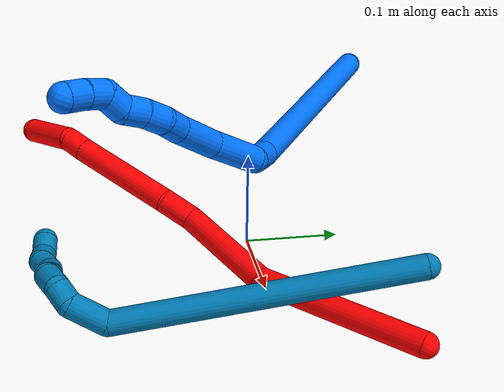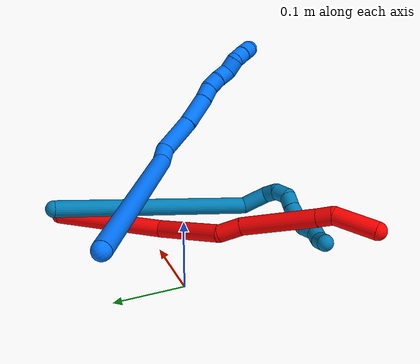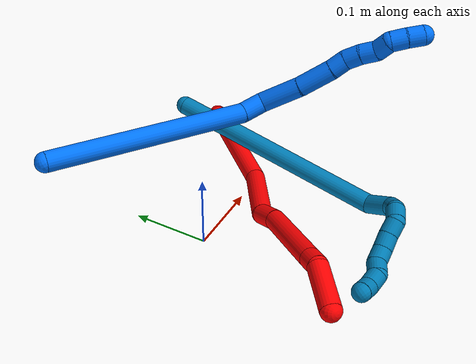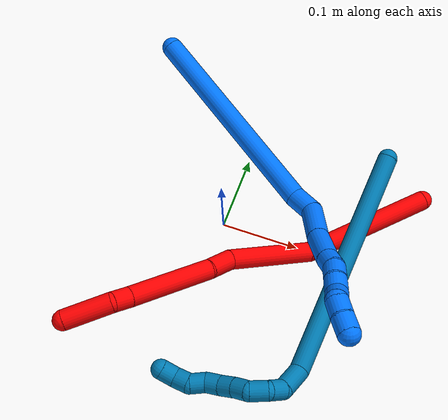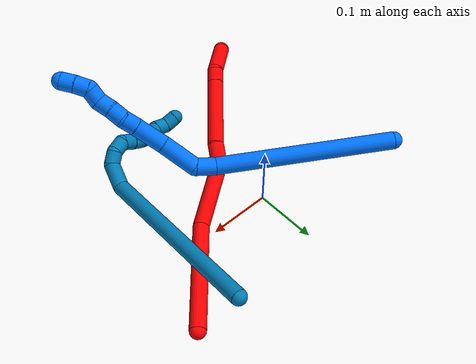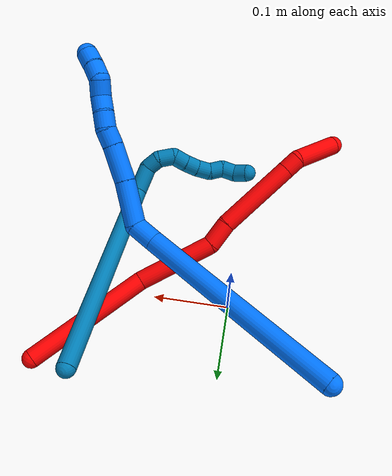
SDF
<sdf version="1.7">
 <world name="default">
  <model name="2">
   <static>0</static>
   <link name="2">
    <collision name="collision-cylinder-e_1_1_4">
     <pose>-0.020688 -0.032253 0.075958 0.40155 -0.245634 -0.050233</pose>
     <geometry><cylinder><radius>0.0125</radius><length>0.170152</length></cylinder></geometry>
     <surface>
      <friction><ode><mu>1.16</mu><mu2>1.16</mu2><slip1>0</slip1><slip2>0</slip2></ode></friction>
      <contact><ode><kp>1e+06</kp><kd>1</kd><max_vel>0</max_vel><min_depth>0.001</min_depth></ode></contact>
     </surface>
    </collision>
    <visual name="visual-cylinder-e_1_1_4">
     <pose>-0.020688 -0.032253 0.075958 0.40155 -0.245634 -0.050233</pose>
     <geometry><cylinder><radius>0.0125</radius><length>0.170152</length></cylinder></geometry>
     <material><ambient>1 0 0 1</ambient></material>
    </visual>
    <collision name="collision-cylinder-e_2_4_5">
     <pose>-0.067906 -0.075131 0.196372 0.234591 -0.525896 -0.063417</pose>
     <geometry><cylinder><radius>0.0125</radius><length>0.105698</length></cylinder></geometry>
     <surface>
      <friction><ode><mu>1.16</mu><mu2>1.16</mu2><slip1>0</slip1><slip2>0</slip2></ode></friction>
      <contact><ode><kp>1e+06</kp><kd>1</kd><max_vel>0</max_vel><min_depth>0.001</min_depth></ode></contact>
     </surface>
    </collision>
    <visual name="visual-cylinder-e_2_4_5">
     <pose>-0.067906 -0.075131 0.196372 0.234591 -0.525896 -0.063417</pose>
     <geometry><cylinder><radius>0.0125</radius><length>0.105698</length></cylinder></geometry>
     <material><ambient>1 0 0 1</ambient></material>
    </visual>
    <collision name="collision-cylinder-e_3_5_6">
     <pose>-0.096726 -0.085565 0.257675 -0.011339 -0.135116 0.000767</pose>
     <geometry><cylinder><radius>0.0125</radius><length>0.034007</length></cylinder></geometry>
     <surface>
      <friction><ode><mu>1.16</mu><mu2>1.16</mu2><slip1>0</slip1><slip2>0</slip2></ode></friction>
      <contact><ode><kp>1e+06</kp><kd>1</kd><max_vel>0</max_vel><min_depth>0.001</min_depth></ode></contact>
     </surface>
    </collision>
    <visual name="visual-cylinder-e_3_5_6">
     <pose>-0.096726 -0.085565 0.257675 -0.011339 -0.135116 0.000767</pose>
     <geometry><cylinder><radius>0.0125</radius><length>0.034007</length></cylinder></geometry>
     <material><ambient>1 0 0 1</ambient></material>
    </visual>
    <collision name="collision-cylinder-e_4_6_7">
     <pose>-0.113373 -0.093115 0.326177 0.148765 -0.268245 -0.02011</pose>
     <geometry><cylinder><radius>0.0125</radius><length>0.108336</length></cylinder></geometry>
     <surface>
      <friction><ode><mu>1.16</mu><mu2>1.16</mu2><slip1>0</slip1><slip2>0</slip2></ode></friction>
      <contact><ode><kp>1e+06</kp><kd>1</kd><max_vel>0</max_vel><min_depth>0.001</min_depth></ode></contact>
     </surface>
    </collision>
    <visual name="visual-cylinder-e_4_6_7">
     <pose>-0.113373 -0.093115 0.326177 0.148765 -0.268245 -0.02011</pose>
     <geometry><cylinder><radius>0.0125</radius><length>0.108336</length></cylinder></geometry>
     <material><ambient>1 0 0 1</ambient></material>
    </visual>
    <collision name="collision-cylinder-e_5_7_8">
     <pose>-0.130945 -0.101973 0.388449 0.104773 -0.292519 -0.015448</pose>
     <geometry><cylinder><radius>0.0125</radius><length>0.0223</length></cylinder></geometry>
     <surface>
      <friction><ode><mu>1.16</mu><mu2>1.16</mu2><slip1>0</slip1><slip2>0</slip2></ode></friction>
      <contact><ode><kp>1e+06</kp><kd>1</kd><max_vel>0</max_vel><min_depth>0.001</min_depth></ode></contact>
     </surface>
    </collision>
    <visual name="visual-cylinder-e_5_7_8">
     <pose>-0.130945 -0.101973 0.388449 0.104773 -0.292519 -0.015448</pose>
     <geometry><cylinder><radius>0.0125</radius><length>0.0223</length></cylinder></geometry>
     <material><ambient>1 0 0 1</ambient></material>
    </visual>
    <collision name="collision-cylinder-e_6_8_2">
     <pose>-0.144453 -0.119003 0.422003 0.60654 -0.353247 -0.111587</pose>
     <geometry><cylinder><radius>0.0125</radius><length>0.059507</length></cylinder></geometry>
     <surface>
      <friction><ode><mu>1.16</mu><mu2>1.16</mu2><slip1>0</slip1><slip2>0</slip2></ode></friction>
      <contact><ode><kp>1e+06</kp><kd>1</kd><max_vel>0</max_vel><min_depth>0.001</min_depth></ode></contact>
     </surface>
    </collision>
    <visual name="visual-cylinder-e_6_8_2">
     <pose>-0.144453 -0.119003 0.422003 0.60654 -0.353247 -0.111587</pose>
     <geometry><cylinder><radius>0.0125</radius><length>0.059507</length></cylinder></geometry>
     <material><ambient>1 0 0 1</ambient></material>
    </visual>
    <collision name="collision-sphere-2">
     <pose>-0.154746 -0.134916 0.44494 0 -0 0</pose>
     <geometry><sphere><radius>0.0125</radius></sphere></geometry>
     <surface>
      <friction><ode><mu>1.16</mu><mu2>1.16</mu2><slip1>0</slip1><slip2>0</slip2></ode></friction>
      <contact><ode><kp>1e+06</kp><kd>1</kd><max_vel>0</max_vel><min_depth>0.001</min_depth></ode></contact>
     </surface>
    </collision>
    <visual name="visual-sphere-2">
     <pose>-0.154746 -0.134916 0.44494 0 -0 0</pose>
     <geometry><sphere><radius>0.0125</radius></sphere></geometry>
     <material><ambient>1 0 0 1</ambient></material>
    </visual>
    <collision name="collision-sphere-4">
     <pose>-0.041376 -0.064507 0.151916 0 -0 0</pose>
     <geometry><sphere><radius>0.0125</radius></sphere></geometry>
     <surface>
      <friction><ode><mu>1.16</mu><mu2>1.16</mu2><slip1>0</slip1><slip2>0</slip2></ode></friction>
      <contact><ode><kp>1e+06</kp><kd>1</kd><max_vel>0</max_vel><min_depth>0.001</min_depth></ode></contact>
     </surface>
    </collision>
    <visual name="visual-sphere-4">
     <pose>-0.041376 -0.064507 0.151916 0 -0 0</pose>
     <geometry><sphere><radius>0.0125</radius></sphere></geometry>
     <material><ambient>1 0 0 1</ambient></material>
    </visual>
    <collision name="collision-sphere-1">
     <geometry><sphere><radius>0.0125</radius></sphere></geometry>
     <surface>
      <friction><ode><mu>1.16</mu><mu2>1.16</mu2><slip1>0</slip1><slip2>0</slip2></ode></friction>
      <contact><ode><kp>1e+06</kp><kd>1</kd><max_vel>0</max_vel><min_depth>0.001</min_depth></ode></contact>
     </surface>
    </collision>
    <visual name="visual-sphere-1">
     <geometry><sphere><radius>0.0125</radius></sphere></geometry>
     <material><ambient>1 0 0 1</ambient></material>
    </visual>
    <collision name="collision-sphere-8">
     <pose>-0.13416 -0.10309 0.399066 0 -0 0</pose>
     <geometry><sphere><radius>0.0125</radius></sphere></geometry>
     <surface>
      <friction><ode><mu>1.16</mu><mu2>1.16</mu2><slip1>0</slip1><slip2>0</slip2></ode></friction>
      <contact><ode><kp>1e+06</kp><kd>1</kd><max_vel>0</max_vel><min_depth>0.001</min_depth></ode></contact>
     </surface>
    </collision>
    <visual name="visual-sphere-8">
     <pose>-0.13416 -0.10309 0.399066 0 -0 0</pose>
     <geometry><sphere><radius>0.0125</radius></sphere></geometry>
     <material><ambient>1 0 0 1</ambient></material>
    </visual>
    <collision name="collision-sphere-5">
     <pose>-0.094435 -0.085756 0.240828 0 -0 0</pose>
     <geometry><sphere><radius>0.0125</radius></sphere></geometry>
     <surface>
      <friction><ode><mu>1.16</mu><mu2>1.16</mu2><slip1>0</slip1><slip2>0</slip2></ode></friction>
      <contact><ode><kp>1e+06</kp><kd>1</kd><max_vel>0</max_vel><min_depth>0.001</min_depth></ode></contact>
     </surface>
    </collision>
    <visual name="visual-sphere-5">
     <pose>-0.094435 -0.085756 0.240828 0 -0 0</pose>
     <geometry><sphere><radius>0.0125</radius></sphere></geometry>
     <material><ambient>1 0 0 1</ambient></material>
    </visual>
    <collision name="collision-sphere-6">
     <pose>-0.099016 -0.085374 0.274523 0 -0 0</pose>
     <geometry><sphere><radius>0.0125</radius></sphere></geometry>
     <surface>
      <friction><ode><mu>1.16</mu><mu2>1.16</mu2><slip1>0</slip1><slip2>0</slip2></ode></friction>
      <contact><ode><kp>1e+06</kp><kd>1</kd><max_vel>0</max_vel><min_depth>0.001</min_depth></ode></contact>
     </surface>
    </collision>
    <visual name="visual-sphere-6">
     <pose>-0.099016 -0.085374 0.274523 0 -0 0</pose>
     <geometry><sphere><radius>0.0125</radius></sphere></geometry>
     <material><ambient>1 0 0 1</ambient></material>
    </visual>
    <collision name="collision-sphere-7">
     <pose>-0.12773 -0.100857 0.377831 0 -0 0</pose>
     <geometry><sphere><radius>0.0125</radius></sphere></geometry>
     <surface>
      <friction><ode><mu>1.16</mu><mu2>1.16</mu2><slip1>0</slip1><slip2>0</slip2></ode></friction>
      <contact><ode><kp>1e+06</kp><kd>1</kd><max_vel>0</max_vel><min_depth>0.001</min_depth></ode></contact>
     </surface>
    </collision>
    <visual name="visual-sphere-7">
     <pose>-0.12773 -0.100857 0.377831 0 -0 0</pose>
     <geometry><sphere><radius>0.0125</radius></sphere></geometry>
     <material><ambient>1 0 0 1</ambient></material>
    </visual>
    <inertial>
     <pose>-0.075571 -0.071565 0.223109 0 -0 0</pose>
     <mass>0.5</mass>
     <inertia>
      <ixx>0.000581</ixx>
      <ixy>0</ixy>
      <ixz>0</ixz>
      <iyy>0.000577</iyy>
      <iyz>0</iyz>
      <izz>0.00043</izz>
     </inertia>
    </inertial>
   </link>
   <pose>0.234558 0.114986 0.011495 1.15539 0.212922 -0.507524</pose>
  </model>
  <model name="9">
   <static>0</static>
   <link name="9">
    <collision name="collision-cylinder-e_1_1_4">
     <pose>-0.040137 -0.058733 0.130535 0.422805 -0.273382 -0.059021</pose>
     <geometry><cylinder><radius>0.0125</radius><length>0.297321</length></cylinder></geometry>
     <surface>
      <friction><ode><mu>1.16</mu><mu2>1.16</mu2><slip1>0</slip1><slip2>0</slip2></ode></friction>
      <contact><ode><kp>1e+06</kp><kd>1</kd><max_vel>0</max_vel><min_depth>0.001</min_depth></ode></contact>
     </surface>
    </collision>
    <visual name="visual-cylinder-e_1_1_4">
     <pose>-0.040137 -0.058733 0.130535 0.422805 -0.273382 -0.059021</pose>
     <geometry><cylinder><radius>0.0125</radius><length>0.297321</length></cylinder></geometry>
     <material><ambient>0 0.490196 0.709804 1</ambient></material>
    </visual>
    <collision name="collision-cylinder-e_2_4_5">
     <pose>-0.08226 -0.134387 0.270588 1.05842 -0.101947 -0.059658</pose>
     <geometry><cylinder><radius>0.0125</radius><length>0.039031</length></cylinder></geometry>
     <surface>
      <friction><ode><mu>1.16</mu><mu2>1.16</mu2><slip1>0</slip1><slip2>0</slip2></ode></friction>
      <contact><ode><kp>1e+06</kp><kd>1</kd><max_vel>0</max_vel><min_depth>0.001</min_depth></ode></contact>
     </surface>
    </collision>
    <visual name="visual-cylinder-e_2_4_5">
     <pose>-0.08226 -0.134387 0.270588 1.05842 -0.101947 -0.059658</pose>
     <geometry><cylinder><radius>0.0125</radius><length>0.039031</length></cylinder></geometry>
     <material><ambient>0 0.490196 0.709804 1</ambient></material>
    </visual>
    <collision name="collision-cylinder-e_3_5_6">
     <pose>-0.079591 -0.160134 0.282954 1.25865 0.46517 0.341563</pose>
     <geometry><cylinder><radius>0.0125</radius><length>0.020753</length></cylinder></geometry>
     <surface>
      <friction><ode><mu>1.16</mu><mu2>1.16</mu2><slip1>0</slip1><slip2>0</slip2></ode></friction>
      <contact><ode><kp>1e+06</kp><kd>1</kd><max_vel>0</max_vel><min_depth>0.001</min_depth></ode></contact>
     </surface>
    </collision>
    <visual name="visual-cylinder-e_3_5_6">
     <pose>-0.079591 -0.160134 0.282954 1.25865 0.46517 0.341563</pose>
     <geometry><cylinder><radius>0.0125</radius><length>0.020753</length></cylinder></geometry>
     <material><ambient>0 0.490196 0.709804 1</ambient></material>
    </visual>
    <collision name="collision-cylinder-e_4_6_7">
     <pose>-0.066523 -0.174004 0.291645 0.712147 0.828406 0.324157</pose>
     <geometry><cylinder><radius>0.0125</radius><length>0.022837</length></cylinder></geometry>
     <surface>
      <friction><ode><mu>1.16</mu><mu2>1.16</mu2><slip1>0</slip1><slip2>0</slip2></ode></friction>
      <contact><ode><kp>1e+06</kp><kd>1</kd><max_vel>0</max_vel><min_depth>0.001</min_depth></ode></contact>
     </surface>
    </collision>
    <visual name="visual-cylinder-e_4_6_7">
     <pose>-0.066523 -0.174004 0.291645 0.712147 0.828406 0.324157</pose>
     <geometry><cylinder><radius>0.0125</radius><length>0.022837</length></cylinder></geometry>
     <material><ambient>0 0.490196 0.709804 1</ambient></material>
    </visual>
    <collision name="collision-cylinder-e_5_7_8">
     <pose>-0.049355 -0.176738 0.301777 -0.494029 1.06303 -0.294378</pose>
     <geometry><cylinder><radius>0.0125</radius><length>0.020037</length></cylinder></geometry>
     <surface>
      <friction><ode><mu>1.16</mu><mu2>1.16</mu2><slip1>0</slip1><slip2>0</slip2></ode></friction>
      <contact><ode><kp>1e+06</kp><kd>1</kd><max_vel>0</max_vel><min_depth>0.001</min_depth></ode></contact>
     </surface>
    </collision>
    <visual name="visual-cylinder-e_5_7_8">
     <pose>-0.049355 -0.176738 0.301777 -0.494029 1.06303 -0.294378</pose>
     <geometry><cylinder><radius>0.0125</radius><length>0.020037</length></cylinder></geometry>
     <material><ambient>0 0.490196 0.709804 1</ambient></material>
    </visual>
    <collision name="collision-cylinder-e_6_8_9">
     <pose>-0.032074 -0.17296 0.311101 -0.283785 1.01933 -0.159348</pose>
     <geometry><cylinder><radius>0.0125</radius><length>0.02002</length></cylinder></geometry>
     <surface>
      <friction><ode><mu>1.16</mu><mu2>1.16</mu2><slip1>0</slip1><slip2>0</slip2></ode></friction>
      <contact><ode><kp>1e+06</kp><kd>1</kd><max_vel>0</max_vel><min_depth>0.001</min_depth></ode></contact>
     </surface>
    </collision>
    <visual name="visual-cylinder-e_6_8_9">
     <pose>-0.032074 -0.17296 0.311101 -0.283785 1.01933 -0.159348</pose>
     <geometry><cylinder><radius>0.0125</radius><length>0.02002</length></cylinder></geometry>
     <material><ambient>0 0.490196 0.709804 1</ambient></material>
    </visual>
    <collision name="collision-cylinder-e_7_9_10">
     <pose>-0.014501 -0.171874 0.320381 0.089811 1.13052 0.05699</pose>
     <geometry><cylinder><radius>0.0125</radius><length>0.020001</length></cylinder></geometry>
     <surface>
      <friction><ode><mu>1.16</mu><mu2>1.16</mu2><slip1>0</slip1><slip2>0</slip2></ode></friction>
      <contact><ode><kp>1e+06</kp><kd>1</kd><max_vel>0</max_vel><min_depth>0.001</min_depth></ode></contact>
     </surface>
    </collision>
    <visual name="visual-cylinder-e_7_9_10">
     <pose>-0.014501 -0.171874 0.320381 0.089811 1.13052 0.05699</pose>
     <geometry><cylinder><radius>0.0125</radius><length>0.020001</length></cylinder></geometry>
     <material><ambient>0 0.490196 0.709804 1</ambient></material>
    </visual>
    <collision name="collision-cylinder-e_8_10_11">
     <pose>0.001535 -0.176706 0.330225 0.67149 0.773879 0.282493</pose>
     <geometry><cylinder><radius>0.0125</radius><length>0.020001</length></cylinder></geometry>
     <surface>
      <friction><ode><mu>1.16</mu><mu2>1.16</mu2><slip1>0</slip1><slip2>0</slip2></ode></friction>
      <contact><ode><kp>1e+06</kp><kd>1</kd><max_vel>0</max_vel><min_depth>0.001</min_depth></ode></contact>
     </surface>
    </collision>
    <visual name="visual-cylinder-e_8_10_11">
     <pose>0.001535 -0.176706 0.330225 0.67149 0.773879 0.282493</pose>
     <geometry><cylinder><radius>0.0125</radius><length>0.020001</length></cylinder></geometry>
     <material><ambient>0 0.490196 0.709804 1</ambient></material>
    </visual>
    <collision name="collision-cylinder-e_9_11_12">
     <pose>0.018261 -0.181652 0.338051 0.219439 1.34065 0.174228</pose>
     <geometry><cylinder><radius>0.0125</radius><length>0.02</length></cylinder></geometry>
     <surface>
      <friction><ode><mu>1.16</mu><mu2>1.16</mu2><slip1>0</slip1><slip2>0</slip2></ode></friction>
      <contact><ode><kp>1e+06</kp><kd>1</kd><max_vel>0</max_vel><min_depth>0.001</min_depth></ode></contact>
     </surface>
    </collision>
    <visual name="visual-cylinder-e_9_11_12">
     <pose>0.018261 -0.181652 0.338051 0.219439 1.34065 0.174228</pose>
     <geometry><cylinder><radius>0.0125</radius><length>0.02</length></cylinder></geometry>
     <material><ambient>0 0.490196 0.709804 1</ambient></material>
    </visual>
    <collision name="collision-cylinder-e_10_12_2">
     <pose>0.036838 -0.186819 0.340125 1.6035 1.08457 1.1137</pose>
     <geometry><cylinder><radius>0.0125</radius><length>0.02</length></cylinder></geometry>
     <surface>
      <friction><ode><mu>1.16</mu><mu2>1.16</mu2><slip1>0</slip1><slip2>0</slip2></ode></friction>
      <contact><ode><kp>1e+06</kp><kd>1</kd><max_vel>0</max_vel><min_depth>0.001</min_depth></ode></contact>
     </surface>
    </collision>
    <visual name="visual-cylinder-e_10_12_2">
     <pose>0.036838 -0.186819 0.340125 1.6035 1.08457 1.1137</pose>
     <geometry><cylinder><radius>0.0125</radius><length>0.02</length></cylinder></geometry>
     <material><ambient>0 0.490196 0.709804 1</ambient></material>
    </visual>
    <collision name="collision-sphere-2">
     <pose>0.045679 -0.19149 0.339972 0 -0 0</pose>
     <geometry><sphere><radius>0.0125</radius></sphere></geometry>
     <surface>
      <friction><ode><mu>1.16</mu><mu2>1.16</mu2><slip1>0</slip1><slip2>0</slip2></ode></friction>
      <contact><ode><kp>1e+06</kp><kd>1</kd><max_vel>0</max_vel><min_depth>0.001</min_depth></ode></contact>
     </surface>
    </collision>
    <visual name="visual-sphere-2">
     <pose>0.045679 -0.19149 0.339972 0 -0 0</pose>
     <geometry><sphere><radius>0.0125</radius></sphere></geometry>
     <material><ambient>0 0.490196 0.709804 1</ambient></material>
    </visual>
    <collision name="collision-sphere-12">
     <pose>0.027997 -0.182149 0.340277 0 -0 0</pose>
     <geometry><sphere><radius>0.0125</radius></sphere></geometry>
     <surface>
      <friction><ode><mu>1.16</mu><mu2>1.16</mu2><slip1>0</slip1><slip2>0</slip2></ode></friction>
      <contact><ode><kp>1e+06</kp><kd>1</kd><max_vel>0</max_vel><min_depth>0.001</min_depth></ode></contact>
     </surface>
    </collision>
    <visual name="visual-sphere-12">
     <pose>0.027997 -0.182149 0.340277 0 -0 0</pose>
     <geometry><sphere><radius>0.0125</radius></sphere></geometry>
     <material><ambient>0 0.490196 0.709804 1</ambient></material>
    </visual>
    <collision name="collision-sphere-11">
     <pose>0.008524 -0.181156 0.335824 0 -0 0</pose>
     <geometry><sphere><radius>0.0125</radius></sphere></geometry>
     <surface>
      <friction><ode><mu>1.16</mu><mu2>1.16</mu2><slip1>0</slip1><slip2>0</slip2></ode></friction>
      <contact><ode><kp>1e+06</kp><kd>1</kd><max_vel>0</max_vel><min_depth>0.001</min_depth></ode></contact>
     </surface>
    </collision>
    <visual name="visual-sphere-11">
     <pose>0.008524 -0.181156 0.335824 0 -0 0</pose>
     <geometry><sphere><radius>0.0125</radius></sphere></geometry>
     <material><ambient>0 0.490196 0.709804 1</ambient></material>
    </visual>
    <collision name="collision-sphere-10">
     <pose>-0.005455 -0.172256 0.324625 0 -0 0</pose>
     <geometry><sphere><radius>0.0125</radius></sphere></geometry>
     <surface>
      <friction><ode><mu>1.16</mu><mu2>1.16</mu2><slip1>0</slip1><slip2>0</slip2></ode></friction>
      <contact><ode><kp>1e+06</kp><kd>1</kd><max_vel>0</max_vel><min_depth>0.001</min_depth></ode></contact>
     </surface>
    </collision>
    <visual name="visual-sphere-10">
     <pose>-0.005455 -0.172256 0.324625 0 -0 0</pose>
     <geometry><sphere><radius>0.0125</radius></sphere></geometry>
     <material><ambient>0 0.490196 0.709804 1</ambient></material>
    </visual>
    <collision name="collision-sphere-9">
     <pose>-0.023548 -0.171492 0.316136 0 -0 0</pose>
     <geometry><sphere><radius>0.0125</radius></sphere></geometry>
     <surface>
      <friction><ode><mu>1.16</mu><mu2>1.16</mu2><slip1>0</slip1><slip2>0</slip2></ode></friction>
      <contact><ode><kp>1e+06</kp><kd>1</kd><max_vel>0</max_vel><min_depth>0.001</min_depth></ode></contact>
     </surface>
    </collision>
    <visual name="visual-sphere-9">
     <pose>-0.023548 -0.171492 0.316136 0 -0 0</pose>
     <geometry><sphere><radius>0.0125</radius></sphere></geometry>
     <material><ambient>0 0.490196 0.709804 1</ambient></material>
    </visual>
    <collision name="collision-sphere-4">
     <pose>-0.080274 -0.117466 0.26107 0 -0 0</pose>
     <geometry><sphere><radius>0.0125</radius></sphere></geometry>
     <surface>
      <friction><ode><mu>1.16</mu><mu2>1.16</mu2><slip1>0</slip1><slip2>0</slip2></ode></friction>
      <contact><ode><kp>1e+06</kp><kd>1</kd><max_vel>0</max_vel><min_depth>0.001</min_depth></ode></contact>
     </surface>
    </collision>
    <visual name="visual-sphere-4">
     <pose>-0.080274 -0.117466 0.26107 0 -0 0</pose>
     <geometry><sphere><radius>0.0125</radius></sphere></geometry>
     <material><ambient>0 0.490196 0.709804 1</ambient></material>
    </visual>
    <collision name="collision-sphere-1">
     <geometry><sphere><radius>0.0125</radius></sphere></geometry>
     <surface>
      <friction><ode><mu>1.16</mu><mu2>1.16</mu2><slip1>0</slip1><slip2>0</slip2></ode></friction>
      <contact><ode><kp>1e+06</kp><kd>1</kd><max_vel>0</max_vel><min_depth>0.001</min_depth></ode></contact>
     </surface>
    </collision>
    <visual name="visual-sphere-1">
     <geometry><sphere><radius>0.0125</radius></sphere></geometry>
     <material><ambient>0 0.490196 0.709804 1</ambient></material>
    </visual>
    <collision name="collision-sphere-8">
     <pose>-0.0406 -0.174429 0.306066 0 -0 0</pose>
     <geometry><sphere><radius>0.0125</radius></sphere></geometry>
     <surface>
      <friction><ode><mu>1.16</mu><mu2>1.16</mu2><slip1>0</slip1><slip2>0</slip2></ode></friction>
      <contact><ode><kp>1e+06</kp><kd>1</kd><max_vel>0</max_vel><min_depth>0.001</min_depth></ode></contact>
     </surface>
    </collision>
    <visual name="visual-sphere-8">
     <pose>-0.0406 -0.174429 0.306066 0 -0 0</pose>
     <geometry><sphere><radius>0.0125</radius></sphere></geometry>
     <material><ambient>0 0.490196 0.709804 1</ambient></material>
    </visual>
    <collision name="collision-sphere-5">
     <pose>-0.084246 -0.151308 0.280106 0 -0 0</pose>
     <geometry><sphere><radius>0.0125</radius></sphere></geometry>
     <surface>
      <friction><ode><mu>1.16</mu><mu2>1.16</mu2><slip1>0</slip1><slip2>0</slip2></ode></friction>
      <contact><ode><kp>1e+06</kp><kd>1</kd><max_vel>0</max_vel><min_depth>0.001</min_depth></ode></contact>
     </surface>
    </collision>
    <visual name="visual-sphere-5">
     <pose>-0.084246 -0.151308 0.280106 0 -0 0</pose>
     <geometry><sphere><radius>0.0125</radius></sphere></geometry>
     <material><ambient>0 0.490196 0.709804 1</ambient></material>
    </visual>
    <collision name="collision-sphere-6">
     <pose>-0.074937 -0.168959 0.285802 0 -0 0</pose>
     <geometry><sphere><radius>0.0125</radius></sphere></geometry>
     <surface>
      <friction><ode><mu>1.16</mu><mu2>1.16</mu2><slip1>0</slip1><slip2>0</slip2></ode></friction>
      <contact><ode><kp>1e+06</kp><kd>1</kd><max_vel>0</max_vel><min_depth>0.001</min_depth></ode></contact>
     </surface>
    </collision>
    <visual name="visual-sphere-6">
     <pose>-0.074937 -0.168959 0.285802 0 -0 0</pose>
     <geometry><sphere><radius>0.0125</radius></sphere></geometry>
     <material><ambient>0 0.490196 0.709804 1</ambient></material>
    </visual>
    <collision name="collision-sphere-7">
     <pose>-0.058109 -0.179048 0.297488 0 -0 0</pose>
     <geometry><sphere><radius>0.0125</radius></sphere></geometry>
     <surface>
      <friction><ode><mu>1.16</mu><mu2>1.16</mu2><slip1>0</slip1><slip2>0</slip2></ode></friction>
      <contact><ode><kp>1e+06</kp><kd>1</kd><max_vel>0</max_vel><min_depth>0.001</min_depth></ode></contact>
     </surface>
    </collision>
    <visual name="visual-sphere-7">
     <pose>-0.058109 -0.179048 0.297488 0 -0 0</pose>
     <geometry><sphere><radius>0.0125</radius></sphere></geometry>
     <material><ambient>0 0.490196 0.709804 1</ambient></material>
    </visual>
    <inertial>
     <pose>-0.038207 -0.1027 0.201511 0 -0 0</pose>
     <mass>0.5</mass>
     <inertia>
      <ixx>0.002009</ixx>
      <ixy>0</ixy>
      <ixz>0</ixz>
      <iyy>0.001894</iyy>
      <iyz>0</iyz>
      <izz>0.001491</izz>
     </inertia>
    </inertial>
   </link>
   <pose>0.176719 0.133812 0.056411 -2.17178 0.071047 2.78255</pose>
  </model>
  <model name="14">
   <static>0</static>
   <link name="14">
    <collision name="collision-cylinder-e_1_1_4">
     <pose>0.097184 -0.063882 -0.048792 2.22306 0.879729 1.52124</pose>
     <geometry><cylinder><radius>0.0125</radius><length>0.25224</length></cylinder></geometry>
     <surface>
      <friction><ode><mu>1.16</mu><mu2>1.16</mu2><slip1>0</slip1><slip2>0</slip2></ode></friction>
      <contact><ode><kp>1e+06</kp><kd>1</kd><max_vel>0</max_vel><min_depth>0.001</min_depth></ode></contact>
     </surface>
    </collision>
    <visual name="visual-cylinder-e_1_1_4">
     <pose>0.097184 -0.063882 -0.048792 2.22306 0.879729 1.52124</pose>
     <geometry><cylinder><radius>0.0125</radius><length>0.25224</length></cylinder></geometry>
     <material><ambient>0 0.462745 1 1</ambient></material>
    </visual>
    <collision name="collision-cylinder-e_2_4_5">
     <pose>0.206403 -0.135602 -0.099595 1.82195 0.978918 1.20338</pose>
     <geometry><cylinder><radius>0.0125</radius><length>0.029005</length></cylinder></geometry>
     <surface>
      <friction><ode><mu>1.16</mu><mu2>1.16</mu2><slip1>0</slip1><slip2>0</slip2></ode></friction>
      <contact><ode><kp>1e+06</kp><kd>1</kd><max_vel>0</max_vel><min_depth>0.001</min_depth></ode></contact>
     </surface>
    </collision>
    <visual name="visual-cylinder-e_2_4_5">
     <pose>0.206403 -0.135602 -0.099595 1.82195 0.978918 1.20338</pose>
     <geometry><cylinder><radius>0.0125</radius><length>0.029005</length></cylinder></geometry>
     <material><ambient>0 0.462745 1 1</ambient></material>
    </visual>
    <collision name="collision-cylinder-e_3_5_6">
     <pose>0.228093 -0.168323 -0.099637 1.49187 0.369051 0.34158</pose>
     <geometry><cylinder><radius>0.0125</radius><length>0.053528</length></cylinder></geometry>
     <surface>
      <friction><ode><mu>1.16</mu><mu2>1.16</mu2><slip1>0</slip1><slip2>0</slip2></ode></friction>
      <contact><ode><kp>1e+06</kp><kd>1</kd><max_vel>0</max_vel><min_depth>0.001</min_depth></ode></contact>
     </surface>
    </collision>
    <visual name="visual-cylinder-e_3_5_6">
     <pose>0.228093 -0.168323 -0.099637 1.49187 0.369051 0.34158</pose>
     <geometry><cylinder><radius>0.0125</radius><length>0.053528</length></cylinder></geometry>
     <material><ambient>0 0.462745 1 1</ambient></material>
    </visual>
    <collision name="collision-cylinder-e_4_6_7">
     <pose>0.247665 -0.212889 -0.094686 1.42034 0.462195 0.399246</pose>
     <geometry><cylinder><radius>0.0125</radius><length>0.04448</length></cylinder></geometry>
     <surface>
      <friction><ode><mu>1.16</mu><mu2>1.16</mu2><slip1>0</slip1><slip2>0</slip2></ode></friction>
      <contact><ode><kp>1e+06</kp><kd>1</kd><max_vel>0</max_vel><min_depth>0.001</min_depth></ode></contact>
     </surface>
    </collision>
    <visual name="visual-cylinder-e_4_6_7">
     <pose>0.247665 -0.212889 -0.094686 1.42034 0.462195 0.399246</pose>
     <geometry><cylinder><radius>0.0125</radius><length>0.04448</length></cylinder></geometry>
     <material><ambient>0 0.462745 1 1</ambient></material>
    </visual>
    <collision name="collision-cylinder-e_5_7_8">
     <pose>0.262929 -0.24109 -0.089489 1.31668 0.54593 0.426473</pose>
     <geometry><cylinder><radius>0.0125</radius><length>0.020596</length></cylinder></geometry>
     <surface>
      <friction><ode><mu>1.16</mu><mu2>1.16</mu2><slip1>0</slip1><slip2>0</slip2></ode></friction>
      <contact><ode><kp>1e+06</kp><kd>1</kd><max_vel>0</max_vel><min_depth>0.001</min_depth></ode></contact>
     </surface>
    </collision>
    <visual name="visual-cylinder-e_5_7_8">
     <pose>0.262929 -0.24109 -0.089489 1.31668 0.54593 0.426473</pose>
     <geometry><cylinder><radius>0.0125</radius><length>0.020596</length></cylinder></geometry>
     <material><ambient>0 0.462745 1 1</ambient></material>
    </visual>
    <collision name="collision-cylinder-e_6_8_9">
     <pose>0.271097 -0.25919 -0.086582 1.49845 0.285568 0.265863</pose>
     <geometry><cylinder><radius>0.0125</radius><length>0.020024</length></cylinder></geometry>
     <surface>
      <friction><ode><mu>1.16</mu><mu2>1.16</mu2><slip1>0</slip1><slip2>0</slip2></ode></friction>
      <contact><ode><kp>1e+06</kp><kd>1</kd><max_vel>0</max_vel><min_depth>0.001</min_depth></ode></contact>
     </surface>
    </collision>
    <visual name="visual-cylinder-e_6_8_9">
     <pose>0.271097 -0.25919 -0.086582 1.49845 0.285568 0.265863</pose>
     <geometry><cylinder><radius>0.0125</radius><length>0.020024</length></cylinder></geometry>
     <material><ambient>0 0.462745 1 1</ambient></material>
    </visual>
    <collision name="collision-cylinder-e_7_9_10">
     <pose>0.276878 -0.278278 -0.086865 1.67326 0.300426 0.332336</pose>
     <geometry><cylinder><radius>0.0125</radius><length>0.02001</length></cylinder></geometry>
     <surface>
      <friction><ode><mu>1.16</mu><mu2>1.16</mu2><slip1>0</slip1><slip2>0</slip2></ode></friction>
      <contact><ode><kp>1e+06</kp><kd>1</kd><max_vel>0</max_vel><min_depth>0.001</min_depth></ode></contact>
     </surface>
    </collision>
    <visual name="visual-cylinder-e_7_9_10">
     <pose>0.276878 -0.278278 -0.086865 1.67326 0.300426 0.332336</pose>
     <geometry><cylinder><radius>0.0125</radius><length>0.02001</length></cylinder></geometry>
     <material><ambient>0 0.462745 1 1</ambient></material>
    </visual>
    <collision name="collision-cylinder-e_8_10_11">
     <pose>0.28169 -0.296886 -0.084089 1.17966 0.185923 0.124639</pose>
     <geometry><cylinder><radius>0.0125</radius><length>0.020036</length></cylinder></geometry>
     <surface>
      <friction><ode><mu>1.16</mu><mu2>1.16</mu2><slip1>0</slip1><slip2>0</slip2></ode></friction>
      <contact><ode><kp>1e+06</kp><kd>1</kd><max_vel>0</max_vel><min_depth>0.001</min_depth></ode></contact>
     </surface>
    </collision>
    <visual name="visual-cylinder-e_8_10_11">
     <pose>0.28169 -0.296886 -0.084089 1.17966 0.185923 0.124639</pose>
     <geometry><cylinder><radius>0.0125</radius><length>0.020036</length></cylinder></geometry>
     <material><ambient>0 0.462745 1 1</ambient></material>
    </visual>
    <collision name="collision-cylinder-e_9_11_12">
     <pose>0.288473 -0.314461 -0.0824 1.80976 0.51461 0.646387</pose>
     <geometry><cylinder><radius>0.0125</radius><length>0.020037</length></cylinder></geometry>
     <surface>
      <friction><ode><mu>1.16</mu><mu2>1.16</mu2><slip1>0</slip1><slip2>0</slip2></ode></friction>
      <contact><ode><kp>1e+06</kp><kd>1</kd><max_vel>0</max_vel><min_depth>0.001</min_depth></ode></contact>
     </surface>
    </collision>
    <visual name="visual-cylinder-e_9_11_12">
     <pose>0.288473 -0.314461 -0.0824 1.80976 0.51461 0.646387</pose>
     <geometry><cylinder><radius>0.0125</radius><length>0.020037</length></cylinder></geometry>
     <material><ambient>0 0.462745 1 1</ambient></material>
    </visual>
    <collision name="collision-cylinder-e_10_12_2">
     <pose>0.29872 -0.330902 -0.087412 1.92511 0.559134 0.782128</pose>
     <geometry><cylinder><radius>0.0125</radius><length>0.020044</length></cylinder></geometry>
     <surface>
      <friction><ode><mu>1.16</mu><mu2>1.16</mu2><slip1>0</slip1><slip2>0</slip2></ode></friction>
      <contact><ode><kp>1e+06</kp><kd>1</kd><max_vel>0</max_vel><min_depth>0.001</min_depth></ode></contact>
     </surface>
    </collision>
    <visual name="visual-cylinder-e_10_12_2">
     <pose>0.29872 -0.330902 -0.087412 1.92511 0.559134 0.782128</pose>
     <geometry><cylinder><radius>0.0125</radius><length>0.020044</length></cylinder></geometry>
     <material><ambient>0 0.462745 1 1</ambient></material>
    </visual>
    <collision name="collision-sphere-2">
     <pose>0.304036 -0.33887 -0.09036 0 -0 0</pose>
     <geometry><sphere><radius>0.0125</radius></sphere></geometry>
     <surface>
      <friction><ode><mu>1.16</mu><mu2>1.16</mu2><slip1>0</slip1><slip2>0</slip2></ode></friction>
      <contact><ode><kp>1e+06</kp><kd>1</kd><max_vel>0</max_vel><min_depth>0.001</min_depth></ode></contact>
     </surface>
    </collision>
    <visual name="visual-sphere-2">
     <pose>0.304036 -0.33887 -0.09036 0 -0 0</pose>
     <geometry><sphere><radius>0.0125</radius></sphere></geometry>
     <material><ambient>0 0.462745 1 1</ambient></material>
    </visual>
    <collision name="collision-sphere-12">
     <pose>0.293404 -0.322934 -0.084464 0 -0 0</pose>
     <geometry><sphere><radius>0.0125</radius></sphere></geometry>
     <surface>
      <friction><ode><mu>1.16</mu><mu2>1.16</mu2><slip1>0</slip1><slip2>0</slip2></ode></friction>
      <contact><ode><kp>1e+06</kp><kd>1</kd><max_vel>0</max_vel><min_depth>0.001</min_depth></ode></contact>
     </surface>
    </collision>
    <visual name="visual-sphere-12">
     <pose>0.293404 -0.322934 -0.084464 0 -0 0</pose>
     <geometry><sphere><radius>0.0125</radius></sphere></geometry>
     <material><ambient>0 0.462745 1 1</ambient></material>
    </visual>
    <collision name="collision-sphere-11">
     <pose>0.283542 -0.305988 -0.080336 0 -0 0</pose>
     <geometry><sphere><radius>0.0125</radius></sphere></geometry>
     <surface>
      <friction><ode><mu>1.16</mu><mu2>1.16</mu2><slip1>0</slip1><slip2>0</slip2></ode></friction>
      <contact><ode><kp>1e+06</kp><kd>1</kd><max_vel>0</max_vel><min_depth>0.001</min_depth></ode></contact>
     </surface>
    </collision>
    <visual name="visual-sphere-11">
     <pose>0.283542 -0.305988 -0.080336 0 -0 0</pose>
     <geometry><sphere><radius>0.0125</radius></sphere></geometry>
     <material><ambient>0 0.462745 1 1</ambient></material>
    </visual>
    <collision name="collision-sphere-10">
     <pose>0.279838 -0.287784 -0.087843 0 -0 0</pose>
     <geometry><sphere><radius>0.0125</radius></sphere></geometry>
     <surface>
      <friction><ode><mu>1.16</mu><mu2>1.16</mu2><slip1>0</slip1><slip2>0</slip2></ode></friction>
      <contact><ode><kp>1e+06</kp><kd>1</kd><max_vel>0</max_vel><min_depth>0.001</min_depth></ode></contact>
     </surface>
    </collision>
    <visual name="visual-sphere-10">
     <pose>0.279838 -0.287784 -0.087843 0 -0 0</pose>
     <geometry><sphere><radius>0.0125</radius></sphere></geometry>
     <material><ambient>0 0.462745 1 1</ambient></material>
    </visual>
    <collision name="collision-sphere-9">
     <pose>0.273917 -0.268771 -0.085888 0 -0 0</pose>
     <geometry><sphere><radius>0.0125</radius></sphere></geometry>
     <surface>
      <friction><ode><mu>1.16</mu><mu2>1.16</mu2><slip1>0</slip1><slip2>0</slip2></ode></friction>
      <contact><ode><kp>1e+06</kp><kd>1</kd><max_vel>0</max_vel><min_depth>0.001</min_depth></ode></contact>
     </surface>
    </collision>
    <visual name="visual-sphere-9">
     <pose>0.273917 -0.268771 -0.085888 0 -0 0</pose>
     <geometry><sphere><radius>0.0125</radius></sphere></geometry>
     <material><ambient>0 0.462745 1 1</ambient></material>
    </visual>
    <collision name="collision-sphere-4">
     <pose>0.194367 -0.127764 -0.097584 0 -0 0</pose>
     <geometry><sphere><radius>0.0125</radius></sphere></geometry>
     <surface>
      <friction><ode><mu>1.16</mu><mu2>1.16</mu2><slip1>0</slip1><slip2>0</slip2></ode></friction>
      <contact><ode><kp>1e+06</kp><kd>1</kd><max_vel>0</max_vel><min_depth>0.001</min_depth></ode></contact>
     </surface>
    </collision>
    <visual name="visual-sphere-4">
     <pose>0.194367 -0.127764 -0.097584 0 -0 0</pose>
     <geometry><sphere><radius>0.0125</radius></sphere></geometry>
     <material><ambient>0 0.462745 1 1</ambient></material>
    </visual>
    <collision name="collision-sphere-1">
     <geometry><sphere><radius>0.0125</radius></sphere></geometry>
     <surface>
      <friction><ode><mu>1.16</mu><mu2>1.16</mu2><slip1>0</slip1><slip2>0</slip2></ode></friction>
      <contact><ode><kp>1e+06</kp><kd>1</kd><max_vel>0</max_vel><min_depth>0.001</min_depth></ode></contact>
     </surface>
    </collision>
    <visual name="visual-sphere-1">
     <geometry><sphere><radius>0.0125</radius></sphere></geometry>
     <material><ambient>0 0.462745 1 1</ambient></material>
    </visual>
    <collision name="collision-sphere-8">
     <pose>0.268276 -0.249608 -0.087277 0 -0 0</pose>
     <geometry><sphere><radius>0.0125</radius></sphere></geometry>
     <surface>
      <friction><ode><mu>1.16</mu><mu2>1.16</mu2><slip1>0</slip1><slip2>0</slip2></ode></friction>
      <contact><ode><kp>1e+06</kp><kd>1</kd><max_vel>0</max_vel><min_depth>0.001</min_depth></ode></contact>
     </surface>
    </collision>
    <visual name="visual-sphere-8">
     <pose>0.268276 -0.249608 -0.087277 0 -0 0</pose>
     <geometry><sphere><radius>0.0125</radius></sphere></geometry>
     <material><ambient>0 0.462745 1 1</ambient></material>
    </visual>
    <collision name="collision-sphere-5">
     <pose>0.218439 -0.143439 -0.101606 0 -0 0</pose>
     <geometry><sphere><radius>0.0125</radius></sphere></geometry>
     <surface>
      <friction><ode><mu>1.16</mu><mu2>1.16</mu2><slip1>0</slip1><slip2>0</slip2></ode></friction>
      <contact><ode><kp>1e+06</kp><kd>1</kd><max_vel>0</max_vel><min_depth>0.001</min_depth></ode></contact>
     </surface>
    </collision>
    <visual name="visual-sphere-5">
     <pose>0.218439 -0.143439 -0.101606 0 -0 0</pose>
     <geometry><sphere><radius>0.0125</radius></sphere></geometry>
     <material><ambient>0 0.462745 1 1</ambient></material>
    </visual>
    <collision name="collision-sphere-6">
     <pose>0.237748 -0.193208 -0.097669 0 -0 0</pose>
     <geometry><sphere><radius>0.0125</radius></sphere></geometry>
     <surface>
      <friction><ode><mu>1.16</mu><mu2>1.16</mu2><slip1>0</slip1><slip2>0</slip2></ode></friction>
      <contact><ode><kp>1e+06</kp><kd>1</kd><max_vel>0</max_vel><min_depth>0.001</min_depth></ode></contact>
     </surface>
    </collision>
    <visual name="visual-sphere-6">
     <pose>0.237748 -0.193208 -0.097669 0 -0 0</pose>
     <geometry><sphere><radius>0.0125</radius></sphere></geometry>
     <material><ambient>0 0.462745 1 1</ambient></material>
    </visual>
    <collision name="collision-sphere-7">
     <pose>0.257582 -0.232571 -0.091702 0 -0 0</pose>
     <geometry><sphere><radius>0.0125</radius></sphere></geometry>
     <surface>
      <friction><ode><mu>1.16</mu><mu2>1.16</mu2><slip1>0</slip1><slip2>0</slip2></ode></friction>
      <contact><ode><kp>1e+06</kp><kd>1</kd><max_vel>0</max_vel><min_depth>0.001</min_depth></ode></contact>
     </surface>
    </collision>
    <visual name="visual-sphere-7">
     <pose>0.257582 -0.232571 -0.091702 0 -0 0</pose>
     <geometry><sphere><radius>0.0125</radius></sphere></geometry>
     <material><ambient>0 0.462745 1 1</ambient></material>
    </visual>
    <inertial>
     <pose>0.175043 -0.146263 -0.070288 0 -0 0</pose>
     <mass>0.5</mass>
     <inertia>
      <ixx>0.000965</ixx>
      <ixy>0</ixy>
      <ixz>0</ixz>
      <iyy>0.001637</iyy>
      <iyz>0</iyz>
      <izz>-0.000347</izz>
     </inertia>
    </inertial>
   </link>
   <pose>-0.114221 0.137822 0.156991 -0.424938 -0.115395 0.075169</pose>
  </model>
 </world>
</sdf>
